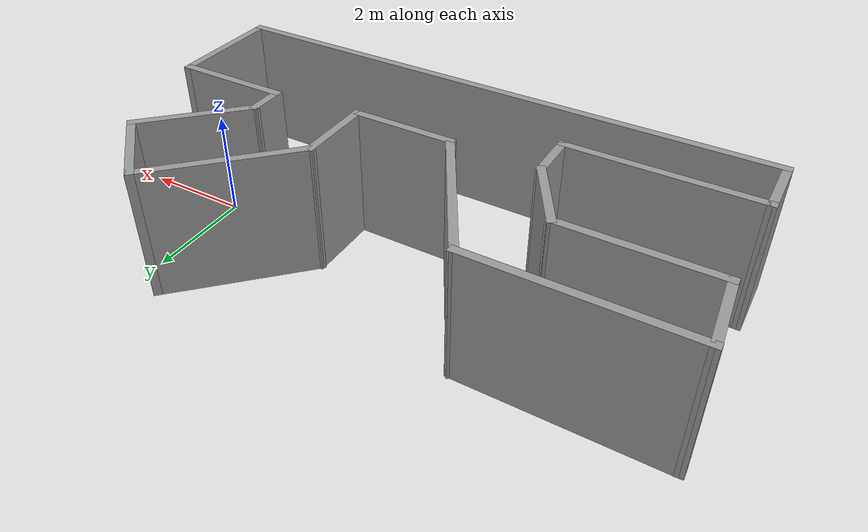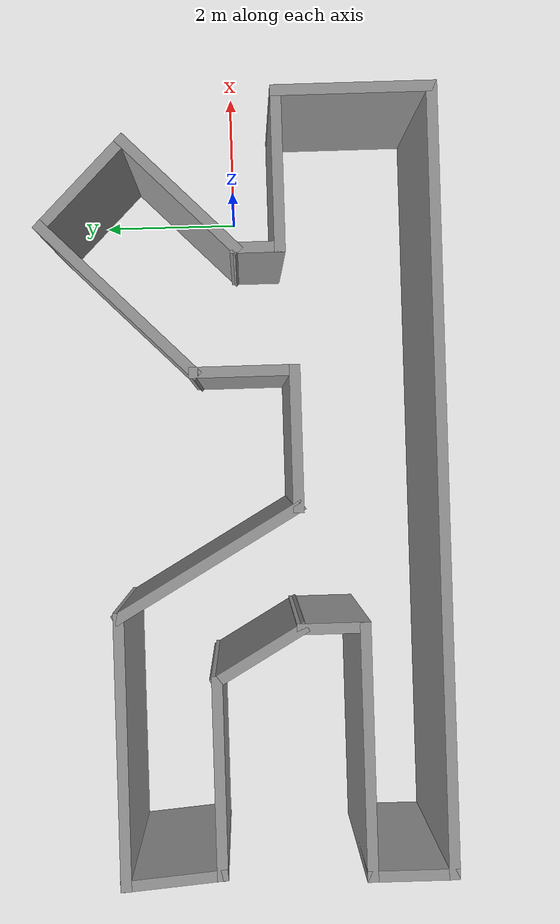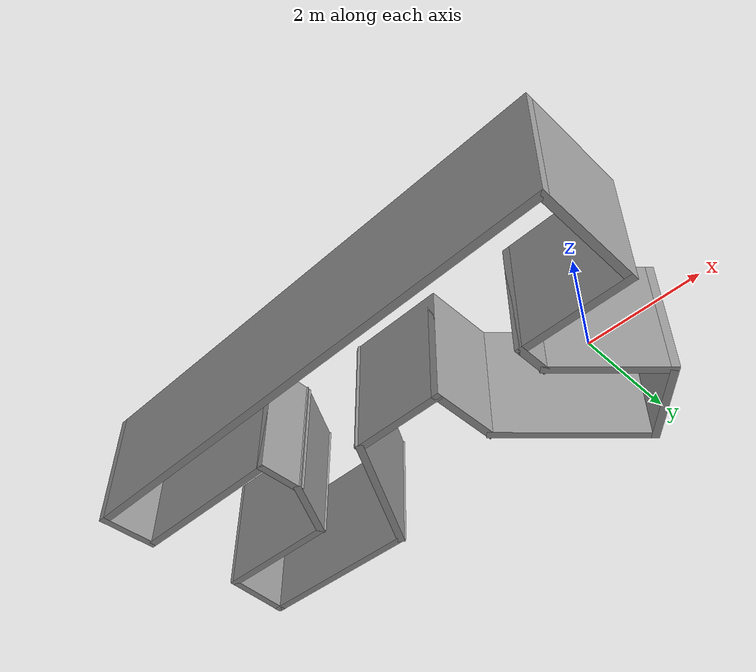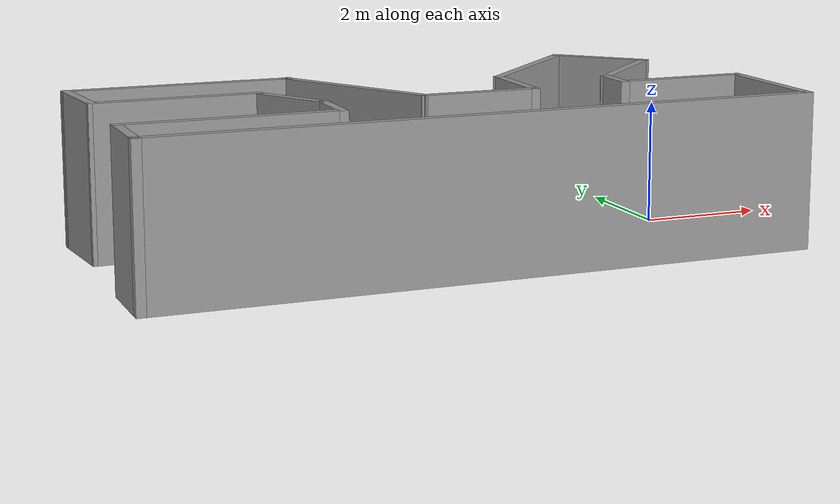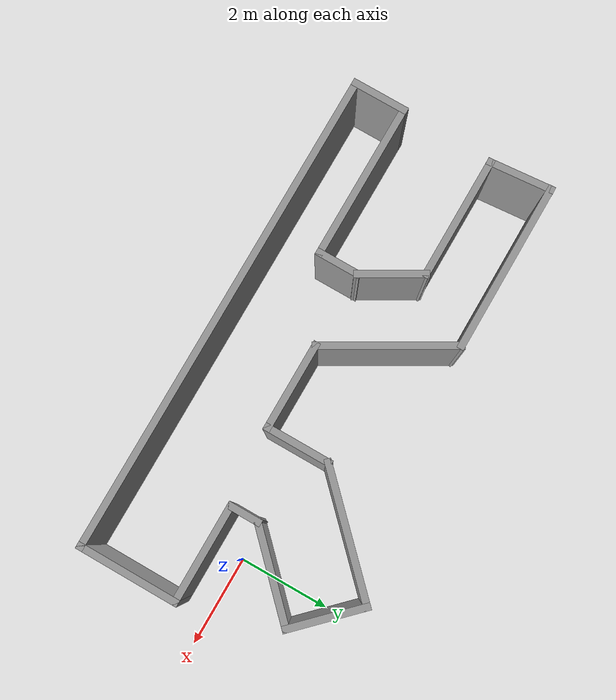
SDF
<?xml version='1.0'?>
<sdf version='1.6'>
  <model name='world'>
    <pose frame=''>-4.08083 -0.039711 0 0 -0 0</pose>
    <link name='Wall_0'>
      <collision name='Wall_0_Collision'>
        <geometry>
          <box>
            <size>3.75 0.15 2.5</size>
          </box>
        </geometry>
        <pose frame=''>0 0 1.25 0 -0 0</pose>
      </collision>
      <visual name='Wall_0_Visual'>
        <pose frame=''>0 0 1.25 0 -0 0</pose>
        <geometry>
          <box>
            <size>3.75 0.15 2.5</size>
          </box>
        </geometry>
        <material>
          <script>
            <uri>file://media/materials/scripts/gazebo.material</uri>
            <name>Gazebo/Grey</name>
          </script>
          <ambient>1 1 1 1</ambient>
        </material>
        <meta>
          <layer>0</layer>
        </meta>
      </visual>
      <pose frame=''>-3.51528 1.74553 0 0 -0 0</pose>
    </link>
    <link name='Wall_1'>
      <collision name='Wall_1_Collision'>
        <geometry>
          <box>
            <size>3 0.15 2.5</size>
          </box>
        </geometry>
        <pose frame=''>0 0 1.25 0 -0 0</pose>
      </collision>
      <visual name='Wall_1_Visual'>
        <pose frame=''>0 0 1.25 0 -0 0</pose>
        <geometry>
          <box>
            <size>3 0.15 2.5</size>
          </box>
        </geometry>
        <material>
          <script>
            <uri>file://media/materials/scripts/gazebo.material</uri>
            <name>Gazebo/Grey</name>
          </script>
          <ambient>1 1 1 1</ambient>
        </material>
        <meta>
          <layer>0</layer>
        </meta>
      </visual>
      <pose frame=''>-1.00278 0.511446 0 0 0 -1.0472</pose>
    </link>
    <link name='Wall_10'>
      <collision name='Wall_10_Collision'>
        <geometry>
          <box>
            <size>10.75 0.15 2.5</size>
          </box>
        </geometry>
        <pose frame=''>0 0 1.25 0 -0 0</pose>
      </collision>
      <visual name='Wall_10_Visual'>
        <pose frame=''>0 0 1.25 0 -0 0</pose>
        <geometry>
          <box>
            <size>10.75 0.15 2.5</size>
          </box>
        </geometry>
        <material>
          <script>
            <uri>file://media/materials/scripts/gazebo.material</uri>
            <name>Gazebo/Grey</name>
          </script>
          <ambient>1 1 1 1</ambient>
        </material>
        <meta>
          <layer>0</layer>
        </meta>
      </visual>
      <pose frame=''>0.021422 -2.67368 0 0 -0 3.14159</pose>
    </link>
    <link name='Wall_11'>
      <collision name='Wall_11_Collision'>
        <geometry>
          <box>
            <size>1.25 0.15 2.5</size>
          </box>
        </geometry>
        <pose frame=''>0 0 1.25 0 -0 0</pose>
      </collision>
      <visual name='Wall_11_Visual'>
        <pose frame=''>0 0 1.25 0 -0 0</pose>
        <geometry>
          <box>
            <size>1.25 0.15 2.5</size>
          </box>
        </geometry>
        <material>
          <script>
            <uri>file://media/materials/scripts/gazebo.material</uri>
            <name>Gazebo/Grey</name>
          </script>
          <ambient>1 1 1 1</ambient>
        </material>
        <meta>
          <layer>0</layer>
        </meta>
      </visual>
      <pose frame=''>-5.27858 -2.12368 0 0 -0 1.5708</pose>
    </link>
    <link name='Wall_12'>
      <collision name='Wall_12_Collision'>
        <geometry>
          <box>
            <size>3.5 0.15 2.5</size>
          </box>
        </geometry>
        <pose frame=''>0 0 1.25 0 -0 0</pose>
      </collision>
      <visual name='Wall_12_Visual'>
        <pose frame=''>0 0 1.25 0 -0 0</pose>
        <geometry>
          <box>
            <size>3.5 0.15 2.5</size>
          </box>
        </geometry>
        <material>
          <script>
            <uri>file://media/materials/scripts/gazebo.material</uri>
            <name>Gazebo/Grey</name>
          </script>
          <ambient>1 1 1 1</ambient>
        </material>
        <meta>
          <layer>0</layer>
        </meta>
      </visual>
      <pose frame=''>-3.60358 -1.57368 0 0 -0 0</pose>
    </link>
    <link name='Wall_13'>
      <collision name='Wall_13_Collision'>
        <geometry>
          <box>
            <size>1 0.15 2.5</size>
          </box>
        </geometry>
        <pose frame=''>0 0 1.25 0 -0 0</pose>
      </collision>
      <visual name='Wall_13_Visual'>
        <pose frame=''>0 0 1.25 0 -0 0</pose>
        <geometry>
          <box>
            <size>1 0.15 2.5</size>
          </box>
        </geometry>
        <material>
          <script>
            <uri>file://media/materials/scripts/gazebo.material</uri>
            <name>Gazebo/Grey</name>
          </script>
          <ambient>1 1 1 1</ambient>
        </material>
        <meta>
          <layer>0</layer>
        </meta>
      </visual>
      <pose frame=''>-1.92858 -1.14868 0 0 -0 1.5708</pose>
    </link>
    <link name='Wall_14'>
      <collision name='Wall_14_Collision'>
        <geometry>
          <box>
            <size>1.5 0.15 2.5</size>
          </box>
        </geometry>
        <pose frame=''>0 0 1.25 0 -0 0</pose>
      </collision>
      <visual name='Wall_14_Visual'>
        <pose frame=''>0 0 1.25 0 -0 0</pose>
        <geometry>
          <box>
            <size>1.5 0.15 2.5</size>
          </box>
        </geometry>
        <material>
          <script>
            <uri>file://media/materials/scripts/gazebo.material</uri>
            <name>Gazebo/Grey</name>
          </script>
          <ambient>1 1 1 1</ambient>
        </material>
        <meta>
          <layer>0</layer>
        </meta>
      </visual>
      <pose frame=''>-2.26608 -0.139113 0 0 -0 2.0944</pose>
    </link>
    <link name='Wall_15'>
      <collision name='Wall_15_Collision'>
        <geometry>
          <box>
            <size>2.75 0.15 2.5</size>
          </box>
        </geometry>
        <pose frame=''>0 0 1.25 0 -0 0</pose>
      </collision>
      <visual name='Wall_15_Visual'>
        <pose frame=''>0 0 1.25 0 -0 0</pose>
        <geometry>
          <box>
            <size>2.75 0.15 2.5</size>
          </box>
        </geometry>
        <material>
          <script>
            <uri>file://media/materials/scripts/gazebo.material</uri>
            <name>Gazebo/Grey</name>
          </script>
          <ambient>1 1 1 1</ambient>
        </material>
        <meta>
          <layer>0</layer>
        </meta>
      </visual>
      <pose frame=''>-3.90358 0.445454 0 0 -0 3.14159</pose>
    </link>
    <link name='Wall_16'>
      <collision name='Wall_16_Collision'>
        <geometry>
          <box>
            <size>1.45487 0.15 2.5</size>
          </box>
        </geometry>
        <pose frame=''>0 0 1.25 0 -0 0</pose>
      </collision>
      <visual name='Wall_16_Visual'>
        <pose frame=''>0 0 1.25 0 -0 0</pose>
        <geometry>
          <box>
            <size>1.45487 0.15 2.5</size>
          </box>
        </geometry>
        <material>
          <script>
            <uri>file://media/materials/scripts/gazebo.material</uri>
            <name>Gazebo/Grey</name>
          </script>
          <ambient>1 1 1 1</ambient>
        </material>
        <meta>
          <layer>0</layer>
        </meta>
      </visual>
      <pose frame=''>-5.25943 1.09549 0 0 -0 1.6565</pose>
    </link>
    <link name='Wall_2'>
      <collision name='Wall_2_Collision'>
        <geometry>
          <box>
            <size>2 0.15 2.5</size>
          </box>
        </geometry>
        <pose frame=''>0 0 1.25 0 -0 0</pose>
      </collision>
      <visual name='Wall_2_Visual'>
        <pose frame=''>0 0 1.25 0 -0 0</pose>
        <geometry>
          <box>
            <size>2 0.15 2.5</size>
          </box>
        </geometry>
        <material>
          <script>
            <uri>file://media/materials/scripts/gazebo.material</uri>
            <name>Gazebo/Grey</name>
          </script>
          <ambient>1 1 1 1</ambient>
        </material>
        <meta>
          <layer>0</layer>
        </meta>
      </visual>
      <pose frame=''>0.634722 -0.72264 0 0 -0 0</pose>
    </link>
    <link name='Wall_3'>
      <collision name='Wall_3_Collision'>
        <geometry>
          <box>
            <size>1.5 0.15 2.5</size>
          </box>
        </geometry>
        <pose frame=''>0 0 1.25 0 -0 0</pose>
      </collision>
      <visual name='Wall_3_Visual'>
        <pose frame=''>0 0 1.25 0 -0 0</pose>
        <geometry>
          <box>
            <size>1.5 0.15 2.5</size>
          </box>
        </geometry>
        <material>
          <script>
            <uri>file://media/materials/scripts/gazebo.material</uri>
            <name>Gazebo/Grey</name>
          </script>
          <ambient>1 1 1 1</ambient>
        </material>
        <meta>
          <layer>0</layer>
        </meta>
      </visual>
      <pose frame=''>1.55972 -0.04764 0 0 -0 1.5708</pose>
    </link>
    <link name='Wall_4'>
      <collision name='Wall_4_Collision'>
        <geometry>
          <box>
            <size>3 0.15 2.5</size>
          </box>
        </geometry>
        <pose frame=''>0 0 1.25 0 -0 0</pose>
      </collision>
      <visual name='Wall_4_Visual'>
        <pose frame=''>0 0 1.25 0 -0 0</pose>
        <geometry>
          <box>
            <size>3 0.15 2.5</size>
          </box>
        </geometry>
        <material>
          <script>
            <uri>file://media/materials/scripts/gazebo.material</uri>
            <name>Gazebo/Grey</name>
          </script>
          <ambient>1 1 1 1</ambient>
        </material>
        <meta>
          <layer>0</layer>
        </meta>
      </visual>
      <pose frame=''>2.56735 1.63499 0 0 -0 0.785398</pose>
    </link>
    <link name='Wall_5'>
      <collision name='Wall_5_Collision'>
        <geometry>
          <box>
            <size>1.75 0.15 2.5</size>
          </box>
        </geometry>
        <pose frame=''>0 0 1.25 0 -0 0</pose>
      </collision>
      <visual name='Wall_5_Visual'>
        <pose frame=''>0 0 1.25 0 -0 0</pose>
        <geometry>
          <box>
            <size>1.75 0.15 2.5</size>
          </box>
        </geometry>
        <material>
          <script>
            <uri>file://media/materials/scripts/gazebo.material</uri>
            <name>Gazebo/Grey</name>
          </script>
          <ambient>1 1 1 1</ambient>
        </material>
        <meta>
          <layer>0</layer>
        </meta>
      </visual>
      <pose frame=''>4.14066 2.07693 0 0 0 -0.785398</pose>
    </link>
    <link name='Wall_6'>
      <collision name='Wall_6_Collision'>
        <geometry>
          <box>
            <size>2.25 0.15 2.5</size>
          </box>
        </geometry>
        <pose frame=''>0 0 1.25 0 -0 0</pose>
      </collision>
      <visual name='Wall_6_Visual'>
        <pose frame=''>0 0 1.25 0 -0 0</pose>
        <geometry>
          <box>
            <size>2.25 0.15 2.5</size>
          </box>
        </geometry>
        <material>
          <script>
            <uri>file://media/materials/scripts/gazebo.material</uri>
            <name>Gazebo/Grey</name>
          </script>
          <ambient>1 1 1 1</ambient>
        </material>
        <meta>
          <layer>0</layer>
        </meta>
      </visual>
      <pose frame=''>3.96388 0.768782 0 0 0 -2.35619</pose>
    </link>
    <link name='Wall_7'>
      <collision name='Wall_7_Collision'>
        <geometry>
          <box>
            <size>0.75 0.15 2.5</size>
          </box>
        </geometry>
        <pose frame=''>0 0 1.25 0 -0 0</pose>
      </collision>
      <visual name='Wall_7_Visual'>
        <pose frame=''>0 0 1.25 0 -0 0</pose>
        <geometry>
          <box>
            <size>0.75 0.15 2.5</size>
          </box>
        </geometry>
        <material>
          <script>
            <uri>file://media/materials/scripts/gazebo.material</uri>
            <name>Gazebo/Grey</name>
          </script>
          <ambient>1 1 1 1</ambient>
        </material>
        <meta>
          <layer>0</layer>
        </meta>
      </visual>
      <pose frame=''>3.22142 -0.273681 0 0 0 -1.5708</pose>
    </link>
    <link name='Wall_8'>
      <collision name='Wall_8_Collision'>
        <geometry>
          <box>
            <size>2.25 0.15 2.5</size>
          </box>
        </geometry>
        <pose frame=''>0 0 1.25 0 -0 0</pose>
      </collision>
      <visual name='Wall_8_Visual'>
        <pose frame=''>0 0 1.25 0 -0 0</pose>
        <geometry>
          <box>
            <size>2.25 0.15 2.5</size>
          </box>
        </geometry>
        <material>
          <script>
            <uri>file://media/materials/scripts/gazebo.material</uri>
            <name>Gazebo/Grey</name>
          </script>
          <ambient>1 1 1 1</ambient>
        </material>
        <meta>
          <layer>0</layer>
        </meta>
      </visual>
      <pose frame=''>4.27142 -0.573681 0 0 -0 0</pose>
    </link>
    <link name='Wall_9'>
      <collision name='Wall_9_Collision'>
        <geometry>
          <box>
            <size>2.25 0.15 2.5</size>
          </box>
        </geometry>
        <pose frame=''>0 0 1.25 0 -0 0</pose>
      </collision>
      <visual name='Wall_9_Visual'>
        <pose frame=''>0 0 1.25 0 -0 0</pose>
        <geometry>
          <box>
            <size>2.25 0.15 2.5</size>
          </box>
        </geometry>
        <material>
          <script>
            <uri>file://media/materials/scripts/gazebo.material</uri>
            <name>Gazebo/Grey</name>
          </script>
          <ambient>1 1 1 1</ambient>
        </material>
        <meta>
          <layer>0</layer>
        </meta>
      </visual>
      <pose frame=''>5.32142 -1.62368 0 0 0 -1.5708</pose>
    </link>
    <static>1</static>
  </model>
</sdf>
